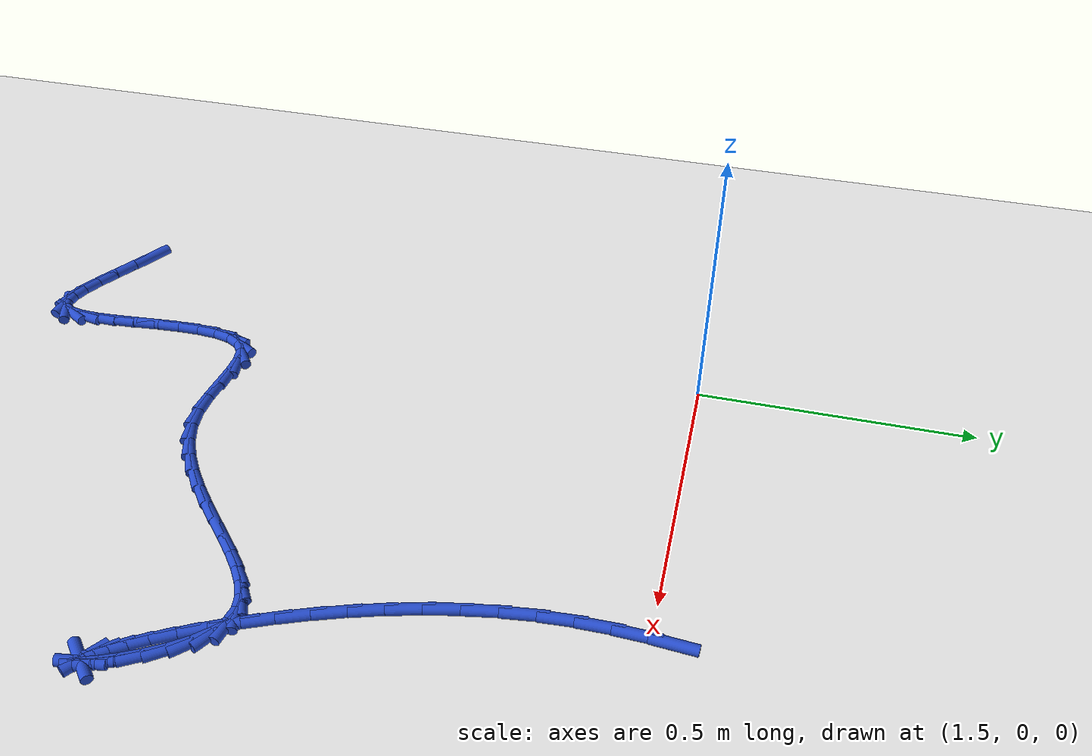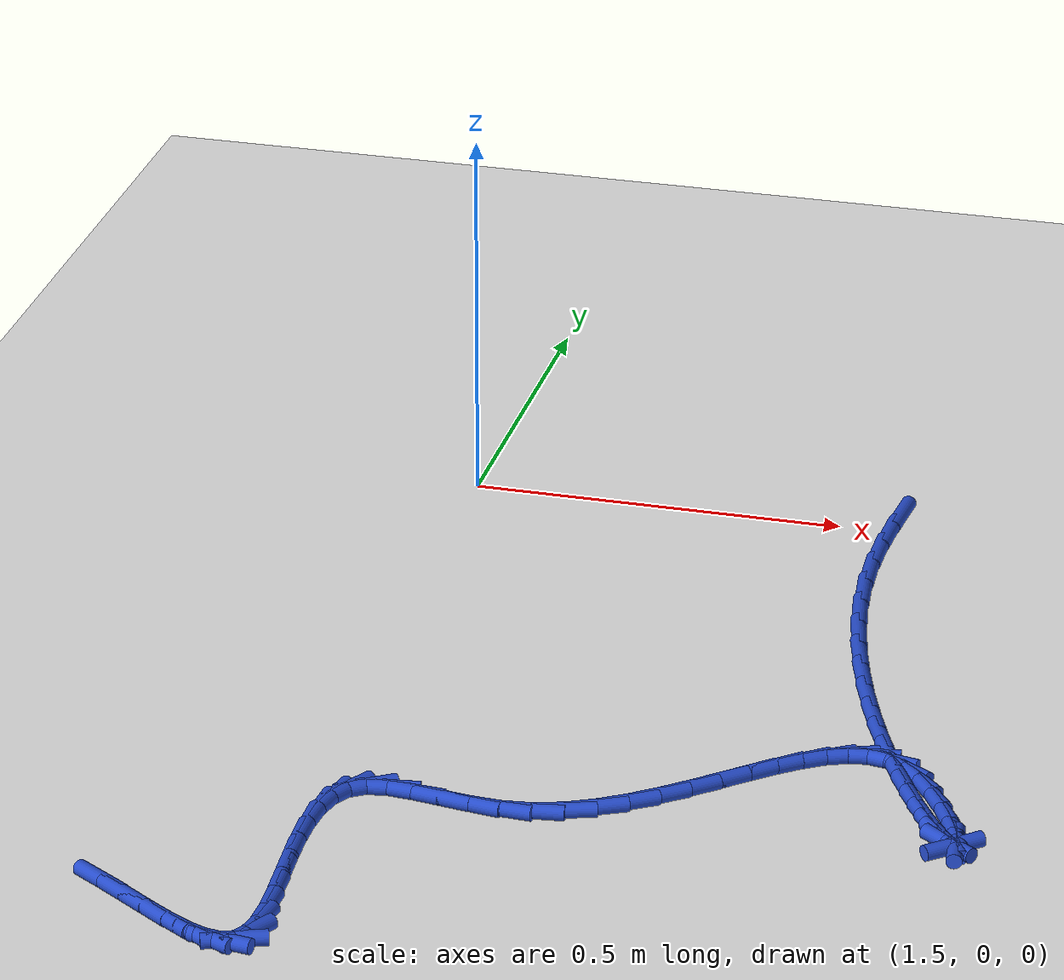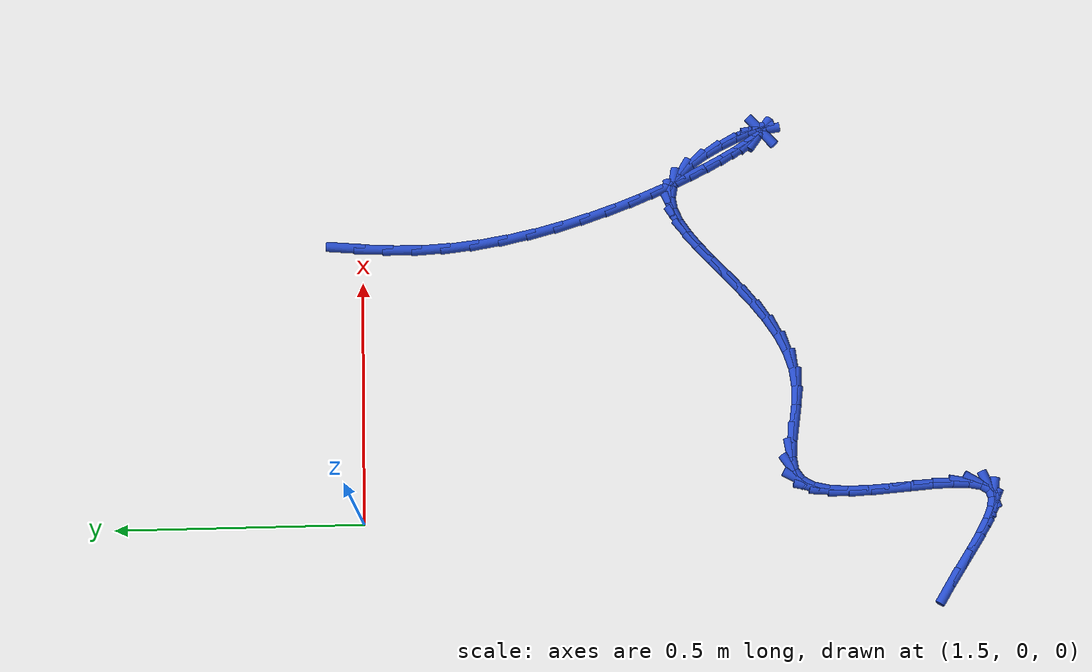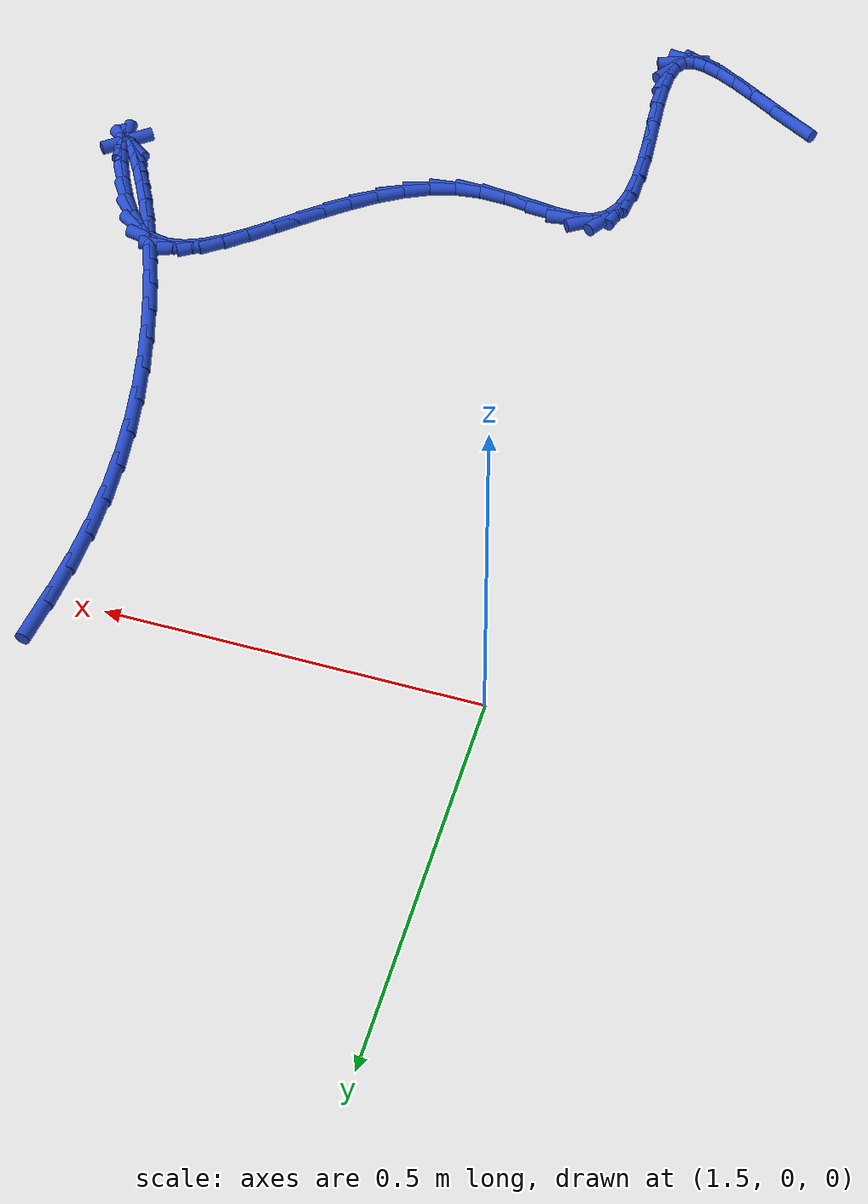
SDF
<sdf version="1.6">
 <world name="default">
  <model name="ground_plane">
   <static>1</static>
   <link name="link">
    <collision name="collision">
     <geometry><plane><normal>0 0 1</normal><size>100 100</size></plane></geometry>
     <surface><friction><ode><mu>100</mu><mu2>50</mu2></ode></friction></surface>
    </collision>
    <visual name="visual">
     <cast_shadows>0</cast_shadows>
     <geometry><plane><normal>0 0 1</normal><size>100 100</size></plane></geometry>
     <material>
      <script><uri>file://media/materials/scripts/gazebo.material</uri><name>Gazebo/WhiteGlow</name></script>
     </material>
    </visual>
   </link>
  </model>
  <model name="line">
   <link name="link_138">
    <pose>2.0751344877637825 0.03548831418222004 0.01 0 1.57 1.4849274273741448</pose>
    <collision name="collision">
     <geometry><cylinder><radius>0.01</radius><length>0.08</length></cylinder></geometry>
    </collision>
    <visual name="visual">
     <material>
      <script><name>Gazebo/Blue</name><uri>file://media/materials/scripts/gazebo.material</uri></script>
     </material>
     <geometry><cylinder><radius>0.01</radius><length>0.08</length></cylinder></geometry>
    </visual>
   </link>
   <link name="link_139">
    <pose>2.070187651464108 -0.021979196242401466 0.01 0 1.57 1.527005799963825</pose>
    <collision name="collision">
     <geometry><cylinder><radius>0.01</radius><length>0.08</length></cylinder></geometry>
    </collision>
    <visual name="visual">
     <material>
      <script><name>Gazebo/Blue</name><uri>file://media/materials/scripts/gazebo.material</uri></script>
     </material>
     <geometry><cylinder><radius>0.01</radius><length>0.08</length></cylinder></geometry>
    </visual>
   </link>
   <link name="link_140">
    <pose>2.0676266993485513 -0.0804236846311027 0.01 0 1.57 -1.5651714506020724</pose>
    <collision name="collision">
     <geometry><cylinder><radius>0.01</radius><length>0.08</length></cylinder></geometry>
    </collision>
    <visual name="visual">
     <material>
      <script><name>Gazebo/Blue</name><uri>file://media/materials/scripts/gazebo.material</uri></script>
     </material>
     <geometry><cylinder><radius>0.01</radius><length>0.08</length></cylinder></geometry>
    </visual>
   </link>
   <link name="link_141">
    <pose>2.0679588255022336 -0.13946901106155285 0.01 0 1.57 -1.5080369851546678</pose>
    <collision name="collision">
     <geometry><cylinder><radius>0.01</radius><length>0.08</length></cylinder></geometry>
    </collision>
    <visual name="visual">
     <material>
      <script><name>Gazebo/Blue</name><uri>file://media/materials/scripts/gazebo.material</uri></script>
     </material>
     <geometry><cylinder><radius>0.01</radius><length>0.08</length></cylinder></geometry>
    </visual>
   </link>
   <link name="link_142">
    <pose>2.0716834360979073 -0.198738581603041 0.01 0 1.57 -1.4488719682675828</pose>
    <collision name="collision">
     <geometry><cylinder><radius>0.01</radius><length>0.08</length></cylinder></geometry>
    </collision>
    <visual name="visual">
     <material>
      <script><name>Gazebo/Blue</name><uri>file://media/materials/scripts/gazebo.material</uri></script>
     </material>
     <geometry><cylinder><radius>0.01</radius><length>0.08</length></cylinder></geometry>
    </visual>
   </link>
   <link name="link_143">
    <pose>2.0789245133588325 -0.25783391640613457 0.01 0 1.57 -1.3957090344412202</pose>
    <collision name="collision">
     <geometry><cylinder><radius>0.01</radius><length>0.08</length></cylinder></geometry>
    </collision>
    <visual name="visual">
     <material>
      <script><name>Gazebo/Blue</name><uri>file://media/materials/scripts/gazebo.material</uri></script>
     </material>
     <geometry><cylinder><radius>0.01</radius><length>0.08</length></cylinder></geometry>
    </visual>
   </link>
   <link name="link_144">
    <pose>2.0892715733677623 -0.31632537809260447 0.01 0 1.57 -1.3482528554422821</pose>
    <collision name="collision">
     <geometry><cylinder><radius>0.01</radius><length>0.08</length></cylinder></geometry>
    </collision>
    <visual name="visual">
     <material>
      <script><name>Gazebo/Blue</name><uri>file://media/materials/scripts/gazebo.material</uri></script>
     </material>
     <geometry><cylinder><radius>0.01</radius><length>0.08</length></cylinder></geometry>
    </visual>
   </link>
   <link name="link_145">
    <pose>2.102273286608527 -0.37378094812698043 0.01 0 1.57 -1.3056139599089225</pose>
    <collision name="collision">
     <geometry><cylinder><radius>0.01</radius><length>0.08</length></cylinder></geometry>
    </collision>
    <visual name="visual">
     <material>
      <script><name>Gazebo/Blue</name><uri>file://media/materials/scripts/gazebo.material</uri></script>
     </material>
     <geometry><cylinder><radius>0.01</radius><length>0.08</length></cylinder></geometry>
    </visual>
   </link>
   <link name="link_146">
    <pose>2.1174783235649537 -0.42976860797378524 0.01 0 1.57 -1.266991806893755</pose>
    <collision name="collision">
     <geometry><cylinder><radius>0.01</radius><length>0.08</length></cylinder></geometry>
    </collision>
    <visual name="visual">
     <material>
      <script><name>Gazebo/Blue</name><uri>file://media/materials/scripts/gazebo.material</uri></script>
     </material>
     <geometry><cylinder><radius>0.01</radius><length>0.08</length></cylinder></geometry>
    </visual>
   </link>
   <link name="link_147">
    <pose>2.134435354720871 -0.48385633909754855 0.01 0 1.57 -1.2316592356665572</pose>
    <collision name="collision">
     <geometry><cylinder><radius>0.01</radius><length>0.08</length></cylinder></geometry>
    </collision>
    <visual name="visual">
     <material>
      <script><name>Gazebo/Blue</name><uri>file://media/materials/scripts/gazebo.material</uri></script>
     </material>
     <geometry><cylinder><radius>0.01</radius><length>0.08</length></cylinder></geometry>
    </visual>
   </link>
   <link name="link_148">
    <pose>2.1526930505601087 -0.5356121229627934 0.01 0 1.57 -1.1989363205473795</pose>
    <collision name="collision">
     <geometry><cylinder><radius>0.01</radius><length>0.08</length></cylinder></geometry>
    </collision>
    <visual name="visual">
     <material>
      <script><name>Gazebo/Blue</name><uri>file://media/materials/scripts/gazebo.material</uri></script>
     </material>
     <geometry><cylinder><radius>0.01</radius><length>0.08</length></cylinder></geometry>
    </visual>
   </link>
   <link name="link_149">
    <pose>2.171800081566494 -0.5846039410340486 0.01 0 1.57 -1.168152693459427</pose>
    <collision name="collision">
     <geometry><cylinder><radius>0.01</radius><length>0.08</length></cylinder></geometry>
    </collision>
    <visual name="visual">
     <material>
      <script><name>Gazebo/Blue</name><uri>file://media/materials/scripts/gazebo.material</uri></script>
     </material>
     <geometry><cylinder><radius>0.01</radius><length>0.08</length></cylinder></geometry>
    </visual>
   </link>
   <link name="link_150">
    <pose>2.1913051182238568 -0.630399774775838 0.01 0 1.57 -1.1385911690107737</pose>
    <collision name="collision">
     <geometry><cylinder><radius>0.01</radius><length>0.08</length></cylinder></geometry>
    </collision>
    <visual name="visual">
     <material>
      <script><name>Gazebo/Blue</name><uri>file://media/materials/scripts/gazebo.material</uri></script>
     </material>
     <geometry><cylinder><radius>0.01</radius><length>0.08</length></cylinder></geometry>
    </visual>
   </link>
   <link name="link_151">
    <pose>2.210756831016025 -0.6725676056526894 0.01 0 1.57 -1.1093942440795812</pose>
    <collision name="collision">
     <geometry><cylinder><radius>0.01</radius><length>0.08</length></cylinder></geometry>
    </collision>
    <visual name="visual">
     <material>
      <script><name>Gazebo/Blue</name><uri>file://media/materials/scripts/gazebo.material</uri></script>
     </material>
     <geometry><cylinder><radius>0.01</radius><length>0.08</length></cylinder></geometry>
    </visual>
   </link>
   <link name="link_152">
    <pose>2.229703890426828 -0.7106754151291297 0.01 0 1.57 -1.0793887672048101</pose>
    <collision name="collision">
     <geometry><cylinder><radius>0.01</radius><length>0.08</length></cylinder></geometry>
    </collision>
    <visual name="visual">
     <material>
      <script><name>Gazebo/Blue</name><uri>file://media/materials/scripts/gazebo.material</uri></script>
     </material>
     <geometry><cylinder><radius>0.01</radius><length>0.08</length></cylinder></geometry>
    </visual>
   </link>
   <link name="link_153">
    <pose>2.247694966940093 -0.744291184669683 0.01 0 1.57 -1.0467115631695425</pose>
    <collision name="collision">
     <geometry><cylinder><radius>0.01</radius><length>0.08</length></cylinder></geometry>
    </collision>
    <visual name="visual">
     <material>
      <script><name>Gazebo/Blue</name><uri>file://media/materials/scripts/gazebo.material</uri></script>
     </material>
     <geometry><cylinder><radius>0.01</radius><length>0.08</length></cylinder></geometry>
    </visual>
   </link>
   <link name="link_154">
    <pose>2.2642787310396506 -0.7729828957388779 0.01 0 1.57 -1.007883703722142</pose>
    <collision name="collision">
     <geometry><cylinder><radius>0.01</radius><length>0.08</length></cylinder></geometry>
    </collision>
    <visual name="visual">
     <material>
      <script><name>Gazebo/Blue</name><uri>file://media/materials/scripts/gazebo.material</uri></script>
     </material>
     <geometry><cylinder><radius>0.01</radius><length>0.08</length></cylinder></geometry>
    </visual>
   </link>
   <link name="link_155">
    <pose>2.279003853209328 -0.7963185298012385 0.01 0 1.57 -0.9550443724175812</pose>
    <collision name="collision">
     <geometry><cylinder><radius>0.01</radius><length>0.08</length></cylinder></geometry>
    </collision>
    <visual name="visual">
     <material>
      <script><name>Gazebo/Blue</name><uri>file://media/materials/scripts/gazebo.material</uri></script>
     </material>
     <geometry><cylinder><radius>0.01</radius><length>0.08</length></cylinder></geometry>
    </visual>
   </link>
   <link name="link_156">
    <pose>2.2914190039329543 -0.8138660683212927 0.01 0 1.57 -0.8649947975606538</pose>
    <collision name="collision">
     <geometry><cylinder><radius>0.01</radius><length>0.08</length></cylinder></geometry>
    </collision>
    <visual name="visual">
     <material>
      <script><name>Gazebo/Blue</name><uri>file://media/materials/scripts/gazebo.material</uri></script>
     </material>
     <geometry><cylinder><radius>0.01</radius><length>0.08</length></cylinder></geometry>
    </visual>
   </link>
   <link name="link_157">
    <pose>2.301072853694358 -0.8251934927635654 0.01 0 1.57 -0.6278582843402382</pose>
    <collision name="collision">
     <geometry><cylinder><radius>0.01</radius><length>0.08</length></cylinder></geometry>
    </collision>
    <visual name="visual">
     <material>
      <script><name>Gazebo/Blue</name><uri>file://media/materials/scripts/gazebo.material</uri></script>
     </material>
     <geometry><cylinder><radius>0.01</radius><length>0.08</length></cylinder></geometry>
    </visual>
   </link>
   <link name="link_158">
    <pose>2.307514072977368 -0.8298687845925836 0.01 0 1.57 0.7144815093225223</pose>
    <collision name="collision">
     <geometry><cylinder><radius>0.01</radius><length>0.08</length></cylinder></geometry>
    </collision>
    <visual name="visual">
     <material>
      <script><name>Gazebo/Blue</name><uri>file://media/materials/scripts/gazebo.material</uri></script>
     </material>
     <geometry><cylinder><radius>0.01</radius><length>0.08</length></cylinder></geometry>
    </visual>
   </link>
   <link name="link_159">
    <pose>2.310291332265813 -0.8274599252728735 0.01 0 1.57 -1.436790535202055</pose>
    <collision name="collision">
     <geometry><cylinder><radius>0.01</radius><length>0.08</length></cylinder></geometry>
    </collision>
    <visual name="visual">
     <material>
      <script><name>Gazebo/Blue</name><uri>file://media/materials/scripts/gazebo.material</uri></script>
     </material>
     <geometry><cylinder><radius>0.01</radius><length>0.08</length></cylinder></geometry>
    </visual>
   </link>
   <link name="link_160">
    <pose>2.308953302043521 -0.8175348962689611 0.01 0 1.57 -1.2517214711202553</pose>
    <collision name="collision">
     <geometry><cylinder><radius>0.01</radius><length>0.08</length></cylinder></geometry>
    </collision>
    <visual name="visual">
     <material>
      <script><name>Gazebo/Blue</name><uri>file://media/materials/scripts/gazebo.material</uri></script>
     </material>
     <geometry><cylinder><radius>0.01</radius><length>0.08</length></cylinder></geometry>
    </visual>
   </link>
   <link name="link_161">
    <pose>2.3030486527943212 -0.7996616790453724 0.01 0 1.57 -1.1751532538493474</pose>
    <collision name="collision">
     <geometry><cylinder><radius>0.01</radius><length>0.08</length></cylinder></geometry>
    </collision>
    <visual name="visual">
     <material>
      <script><name>Gazebo/Blue</name><uri>file://media/materials/scripts/gazebo.material</uri></script>
     </material>
     <geometry><cylinder><radius>0.01</radius><length>0.08</length></cylinder></geometry>
    </visual>
   </link>
   <link name="link_162">
    <pose>2.2922572404946684 -0.7738243126675026 0.01 0 1.57 -1.1177206950537102</pose>
    <collision name="collision">
     <geometry><cylinder><radius>0.01</radius><length>0.08</length></cylinder></geometry>
    </collision>
    <visual name="visual">
     <material>
      <script><name>Gazebo/Blue</name><uri>file://media/materials/scripts/gazebo.material</uri></script>
     </material>
     <geometry><cylinder><radius>0.01</radius><length>0.08</length></cylinder></geometry>
    </visual>
   </link>
   <link name="link_163">
    <pose>2.2771151657083264 -0.7427224342567551 0.01 0 1.57 -1.05170719721193</pose>
    <collision name="collision">
     <geometry><cylinder><radius>0.01</radius><length>0.08</length></cylinder></geometry>
    </collision>
    <visual name="visual">
     <material>
      <script><name>Gazebo/Blue</name><uri>file://media/materials/scripts/gazebo.material</uri></script>
     </material>
     <geometry><cylinder><radius>0.01</radius><length>0.08</length></cylinder></geometry>
    </visual>
   </link>
   <link name="link_164">
    <pose>2.258502055099322 -0.7101451813225004 0.01 0 1.57 -0.959600257633628</pose>
    <collision name="collision">
     <geometry><cylinder><radius>0.01</radius><length>0.08</length></cylinder></geometry>
    </collision>
    <visual name="visual">
     <material>
      <script><name>Gazebo/Blue</name><uri>file://media/materials/scripts/gazebo.material</uri></script>
     </material>
     <geometry><cylinder><radius>0.01</radius><length>0.08</length></cylinder></geometry>
    </visual>
   </link>
   <link name="link_165">
    <pose>2.2372984585372038 -0.679884619340196 0.01 0 1.57 -0.811701752516521</pose>
    <collision name="collision">
     <geometry><cylinder><radius>0.01</radius><length>0.08</length></cylinder></geometry>
    </collision>
    <visual name="visual">
     <material>
      <script><name>Gazebo/Blue</name><uri>file://media/materials/scripts/gazebo.material</uri></script>
     </material>
     <geometry><cylinder><radius>0.01</radius><length>0.08</length></cylinder></geometry>
    </visual>
   </link>
   <link name="link_166">
    <pose>2.214384925891521 -0.6557328137853036 0.01 0 1.57 -0.550235162257148</pose>
    <collision name="collision">
     <geometry><cylinder><radius>0.01</radius><length>0.08</length></cylinder></geometry>
    </collision>
    <visual name="visual">
     <material>
      <script><name>Gazebo/Blue</name><uri>file://media/materials/scripts/gazebo.material</uri></script>
     </material>
     <geometry><cylinder><radius>0.01</radius><length>0.08</length></cylinder></geometry>
    </visual>
   </link>
   <link name="link_167">
    <pose>2.190576963738171 -0.6411283236732721 0.01 0 1.57 -0.19124957295641087</pose>
    <collision name="collision">
     <geometry><cylinder><radius>0.01</radius><length>0.08</length></cylinder></geometry>
    </collision>
    <visual name="visual">
     <material>
      <script><name>Gazebo/Blue</name><uri>file://media/materials/scripts/gazebo.material</uri></script>
     </material>
     <geometry><cylinder><radius>0.01</radius><length>0.08</length></cylinder></geometry>
    </visual>
   </link>
   <link name="link_168">
    <pose>2.1661165087896816 -0.6363923896829283 0.01 0 1.57 0.15106575296611632</pose>
    <collision name="collision">
     <geometry><cylinder><radius>0.01</radius><length>0.08</length></cylinder></geometry>
    </collision>
    <visual name="visual">
     <material>
      <script><name>Gazebo/Blue</name><uri>file://media/materials/scripts/gazebo.material</uri></script>
     </material>
     <geometry><cylinder><radius>0.01</radius><length>0.08</length></cylinder></geometry>
    </visual>
   </link>
   <link name="link_169">
    <pose>2.1409469813340003 -0.6402238333536849 0.01 0 1.57 0.40383380358042154</pose>
    <collision name="collision">
     <geometry><cylinder><radius>0.01</radius><length>0.08</length></cylinder></geometry>
    </collision>
    <visual name="visual">
     <material>
      <script><name>Gazebo/Blue</name><uri>file://media/materials/scripts/gazebo.material</uri></script>
     </material>
     <geometry><cylinder><radius>0.01</radius><length>0.08</length></cylinder></geometry>
    </visual>
   </link>
   <link name="link_170">
    <pose>2.1150092378115217 -0.6513075418649136 0.01 0 1.57 0.5664239279947947</pose>
    <collision name="collision">
     <geometry><cylinder><radius>0.01</radius><length>0.08</length></cylinder></geometry>
    </collision>
    <visual name="visual">
     <material>
      <script><name>Gazebo/Blue</name><uri>file://media/materials/scripts/gazebo.material</uri></script>
     </material>
     <geometry><cylinder><radius>0.01</radius><length>0.08</length></cylinder></geometry>
    </visual>
   </link>
   <link name="link_171">
    <pose>2.0882441346626437 -0.6683284023959869 0.01 0 1.57 0.6641025025992118</pose>
    <collision name="collision">
     <geometry><cylinder><radius>0.01</radius><length>0.08</length></cylinder></geometry>
    </collision>
    <visual name="visual">
     <material>
      <script><name>Gazebo/Blue</name><uri>file://media/materials/scripts/gazebo.material</uri></script>
     </material>
     <geometry><cylinder><radius>0.01</radius><length>0.08</length></cylinder></geometry>
    </visual>
   </link>
   <link name="link_172">
    <pose>2.060592528327759 -0.6899713021262779 0.01 0 1.57 0.7173869564781608</pose>
    <collision name="collision">
     <geometry><cylinder><radius>0.01</radius><length>0.08</length></cylinder></geometry>
    </collision>
    <visual name="visual">
     <material>
      <script><name>Gazebo/Blue</name><uri>file://media/materials/scripts/gazebo.material</uri></script>
     </material>
     <geometry><cylinder><radius>0.01</radius><length>0.08</length></cylinder></geometry>
    </visual>
   </link>
   <link name="link_173">
    <pose>2.031995275247267 -0.7149211282351572 0.01 0 1.57 0.7383824221144216</pose>
    <collision name="collision">
     <geometry><cylinder><radius>0.01</radius><length>0.08</length></cylinder></geometry>
    </collision>
    <visual name="visual">
     <material>
      <script><name>Gazebo/Blue</name><uri>file://media/materials/scripts/gazebo.material</uri></script>
     </material>
     <geometry><cylinder><radius>0.01</radius><length>0.08</length></cylinder></geometry>
    </visual>
   </link>
   <link name="link_174">
    <pose>2.0023932318615616 -0.7418627679019992 0.01 0 1.57 0.7331566008826006</pose>
    <collision name="collision">
     <geometry><cylinder><radius>0.01</radius><length>0.08</length></cylinder></geometry>
    </collision>
    <visual name="visual">
     <material>
      <script><name>Gazebo/Blue</name><uri>file://media/materials/scripts/gazebo.material</uri></script>
     </material>
     <geometry><cylinder><radius>0.01</radius><length>0.08</length></cylinder></geometry>
    </visual>
   </link>
   <link name="link_175">
    <pose>1.971727254611039 -0.7694811083061739 0.01 0 1.57 0.7037490594920985</pose>
    <collision name="collision">
     <geometry><cylinder><radius>0.01</radius><length>0.08</length></cylinder></geometry>
    </collision>
    <visual name="visual">
     <material>
      <script><name>Gazebo/Blue</name><uri>file://media/materials/scripts/gazebo.material</uri></script>
     </material>
     <geometry><cylinder><radius>0.01</radius><length>0.08</length></cylinder></geometry>
    </visual>
   </link>
   <link name="link_176">
    <pose>1.939938199936095 -0.7964610366270557 0.01 0 1.57 0.6492594615334624</pose>
    <collision name="collision">
     <geometry><cylinder><radius>0.01</radius><length>0.08</length></cylinder></geometry>
    </collision>
    <visual name="visual">
     <material>
      <script><name>Gazebo/Blue</name><uri>file://media/materials/scripts/gazebo.material</uri></script>
     </material>
     <geometry><cylinder><radius>0.01</radius><length>0.08</length></cylinder></geometry>
    </visual>
   </link>
   <link name="link_177">
    <pose>1.9069669242771259 -0.8214874400440149 0.01 0 1.57 0.5664396862500773</pose>
    <collision name="collision">
     <geometry><cylinder><radius>0.01</radius><length>0.08</length></cylinder></geometry>
    </collision>
    <visual name="visual">
     <material>
      <script><name>Gazebo/Blue</name><uri>file://media/materials/scripts/gazebo.material</uri></script>
     </material>
     <geometry><cylinder><radius>0.01</radius><length>0.08</length></cylinder></geometry>
    </visual>
   </link>
   <link name="link_178">
    <pose>1.8727542840745275 -0.8432452057364257 0.01 0 1.57 0.450438469219469</pose>
    <collision name="collision">
     <geometry><cylinder><radius>0.01</radius><length>0.08</length></cylinder></geometry>
    </collision>
    <visual name="visual">
     <material>
      <script><name>Gazebo/Blue</name><uri>file://media/materials/scripts/gazebo.material</uri></script>
     </material>
     <geometry><cylinder><radius>0.01</radius><length>0.08</length></cylinder></geometry>
    </visual>
   </link>
   <link name="link_179">
    <pose>1.8372411357686957 -0.8604192208836585 0.01 0 1.57 0.2967557129609531</pose>
    <collision name="collision">
     <geometry><cylinder><radius>0.01</radius><length>0.08</length></cylinder></geometry>
    </collision>
    <visual name="visual">
     <material>
      <script><name>Gazebo/Blue</name><uri>file://media/materials/scripts/gazebo.material</uri></script>
     </material>
     <geometry><cylinder><radius>0.01</radius><length>0.08</length></cylinder></geometry>
    </visual>
   </link>
   <link name="link_180">
    <pose>1.8003683358000258 -0.871694372665087 0.01 0 1.57 0.10721887699976104</pose>
    <collision name="collision">
     <geometry><cylinder><radius>0.01</radius><length>0.08</length></cylinder></geometry>
    </collision>
    <visual name="visual">
     <material>
      <script><name>Gazebo/Blue</name><uri>file://media/materials/scripts/gazebo.material</uri></script>
     </material>
     <geometry><cylinder><radius>0.01</radius><length>0.08</length></cylinder></geometry>
    </visual>
   </link>
   <link name="link_181">
    <pose>1.762097114232441 -0.87581356677089 0.01 0 1.57 -0.059604822088339185</pose>
    <collision name="collision">
     <geometry><cylinder><radius>0.01</radius><length>0.08</length></cylinder></geometry>
    </collision>
    <visual name="visual">
     <material>
      <script><name>Gazebo/Blue</name><uri>file://media/materials/scripts/gazebo.material</uri></script>
     </material>
     <geometry><cylinder><radius>0.01</radius><length>0.08</length></cylinder></geometry>
    </visual>
   </link>
   <link name="link_182">
    <pose>1.7230788743025944 -0.8734851334329589 0.01 0 1.57 -0.1470986528737949</pose>
    <collision name="collision">
     <geometry><cylinder><radius>0.01</radius><length>0.08</length></cylinder></geometry>
    </collision>
    <visual name="visual">
     <material>
      <script><name>Gazebo/Blue</name><uri>file://media/materials/scripts/gazebo.material</uri></script>
     </material>
     <geometry><cylinder><radius>0.01</radius><length>0.08</length></cylinder></geometry>
    </visual>
   </link>
   <link name="link_183">
    <pose>1.6848067400820774 -0.8678143937423145 0.01 0 1.57 -0.1587969866800058</pose>
    <collision name="collision">
     <geometry><cylinder><radius>0.01</radius><length>0.08</length></cylinder></geometry>
    </collision>
    <visual name="visual">
     <material>
      <script><name>Gazebo/Blue</name><uri>file://media/materials/scripts/gazebo.material</uri></script>
     </material>
     <geometry><cylinder><radius>0.01</radius><length>0.08</length></cylinder></geometry>
    </visual>
   </link>
   <link name="link_184">
    <pose>1.6488248936868877 -0.8620520681440614 0.01 0 1.57 -0.08080047934510524</pose>
    <collision name="collision">
     <geometry><cylinder><radius>0.01</radius><length>0.08</length></cylinder></geometry>
    </collision>
    <visual name="visual">
     <material>
      <script><name>Gazebo/Blue</name><uri>file://media/materials/scripts/gazebo.material</uri></script>
     </material>
     <geometry><cylinder><radius>0.01</radius><length>0.08</length></cylinder></geometry>
    </visual>
   </link>
   <link name="link_185">
    <pose>1.6166775172330172 -0.8594488770833035 0.01 0 1.57 0.1412585359917469</pose>
    <collision name="collision">
     <geometry><cylinder><radius>0.01</radius><length>0.08</length></cylinder></geometry>
    </collision>
    <visual name="visual">
     <material>
      <script><name>Gazebo/Blue</name><uri>file://media/materials/scripts/gazebo.material</uri></script>
     </material>
     <geometry><cylinder><radius>0.01</radius><length>0.08</length></cylinder></geometry>
    </visual>
   </link>
   <link name="link_186">
    <pose>1.5899087928364637 -0.8632555410051453 0.01 0 1.57 0.5888351681957529</pose>
    <collision name="collision">
     <geometry><cylinder><radius>0.01</radius><length>0.08</length></cylinder></geometry>
    </collision>
    <visual name="visual">
     <material>
      <script><name>Gazebo/Blue</name><uri>file://media/materials/scripts/gazebo.material</uri></script>
     </material>
     <geometry><cylinder><radius>0.01</radius><length>0.08</length></cylinder></geometry>
    </visual>
   </link>
   <link name="link_187">
    <pose>1.5699798330725778 -0.8765654939315014 0.01 0 1.57 1.0584679327037818</pose>
    <collision name="collision">
     <geometry><cylinder><radius>0.01</radius><length>0.08</length></cylinder></geometry>
    </collision>
    <visual name="visual">
     <material>
      <script><name>Gazebo/Blue</name><uri>file://media/materials/scripts/gazebo.material</uri></script>
     </material>
     <geometry><cylinder><radius>0.01</radius><length>0.08</length></cylinder></geometry>
    </visual>
   </link>
   <link name="link_188">
    <pose>1.5569268212444993 -0.8997741649742709 0.01 0 1.57 1.340015867416229</pose>
    <collision name="collision">
     <geometry><cylinder><radius>0.01</radius><length>0.08</length></cylinder></geometry>
    </collision>
    <visual name="visual">
     <material>
      <script><name>Gazebo/Blue</name><uri>file://media/materials/scripts/gazebo.material</uri></script>
     </material>
     <geometry><cylinder><radius>0.01</radius><length>0.08</length></cylinder></geometry>
    </visual>
   </link>
   <link name="link_189">
    <pose>1.5495878119980504 -0.93100840959521 0.01 0 1.57 1.4952562546848085</pose>
    <collision name="collision">
     <geometry><cylinder><radius>0.01</radius><length>0.08</length></cylinder></geometry>
    </collision>
    <visual name="visual">
     <material>
      <script><name>Gazebo/Blue</name><uri>file://media/materials/scripts/gazebo.material</uri></script>
     </material>
     <geometry><cylinder><radius>0.01</radius><length>0.08</length></cylinder></geometry>
    </visual>
   </link>
   <link name="link_190">
    <pose>1.5467635783406977 -0.9683244930553512 0.01 0 1.57 -1.5589448839110116</pose>
    <collision name="collision">
     <geometry><cylinder><radius>0.01</radius><length>0.08</length></cylinder></geometry>
    </collision>
    <visual name="visual">
     <material>
      <script><name>Gazebo/Blue</name><uri>file://media/materials/scripts/gazebo.material</uri></script>
     </material>
     <geometry><cylinder><radius>0.01</radius><length>0.08</length></cylinder></geometry>
    </visual>
   </link>
   <link name="link_191">
    <pose>1.5472548932799075 -1.0097786806157305 0.01 0 1.57 -1.5111256050242219</pose>
    <collision name="collision">
     <geometry><cylinder><radius>0.01</radius><length>0.08</length></cylinder></geometry>
    </collision>
    <visual name="visual">
     <material>
      <script><name>Gazebo/Blue</name><uri>file://media/materials/scripts/gazebo.material</uri></script>
     </material>
     <geometry><cylinder><radius>0.01</radius><length>0.08</length></cylinder></geometry>
    </visual>
   </link>
   <link name="link_192">
    <pose>1.5498625298231463 -1.0534272375373794 0.01 0 1.57 -1.4906767192630315</pose>
    <collision name="collision">
     <geometry><cylinder><radius>0.01</radius><length>0.08</length></cylinder></geometry>
    </collision>
    <visual name="visual">
     <material>
      <script><name>Gazebo/Blue</name><uri>file://media/materials/scripts/gazebo.material</uri></script>
     </material>
     <geometry><cylinder><radius>0.01</radius><length>0.08</length></cylinder></geometry>
    </visual>
   </link>
   <link name="link_193">
    <pose>1.5533872609778796 -1.0973264290813332 0.01 0 1.57 -1.4941192086800943</pose>
    <collision name="collision">
     <geometry><cylinder><radius>0.01</radius><length>0.08</length></cylinder></geometry>
    </collision>
    <visual name="visual">
     <material>
      <script><name>Gazebo/Blue</name><uri>file://media/materials/scripts/gazebo.material</uri></script>
     </material>
     <geometry><cylinder><radius>0.01</radius><length>0.08</length></cylinder></geometry>
    </visual>
   </link>
   <link name="link_194">
    <pose>1.556629859751576 -1.1395325205086275 0.01 0 1.57 -1.5251636937415933</pose>
    <collision name="collision">
     <geometry><cylinder><radius>0.01</radius><length>0.08</length></cylinder></geometry>
    </collision>
    <visual name="visual">
     <material>
      <script><name>Gazebo/Blue</name><uri>file://media/materials/scripts/gazebo.material</uri></script>
     </material>
     <geometry><cylinder><radius>0.01</radius><length>0.08</length></cylinder></geometry>
    </visual>
   </link>
   <link name="link_195">
    <pose>1.5583910991517 -1.178101777080294 0.01 0 1.57 1.542934985361434</pose>
    <collision name="collision">
     <geometry><cylinder><radius>0.01</radius><length>0.08</length></cylinder></geometry>
    </collision>
    <visual name="visual">
     <material>
      <script><name>Gazebo/Blue</name><uri>file://media/materials/scripts/gazebo.material</uri></script>
     </material>
     <geometry><cylinder><radius>0.01</radius><length>0.08</length></cylinder></geometry>
    </visual>
   </link>
   <link name="link_196">
    <pose>1.5574717521857193 -1.2110904640573692 0.01 0 1.57 1.3845157276642341</pose>
    <collision name="collision">
     <geometry><cylinder><radius>0.01</radius><length>0.08</length></cylinder></geometry>
    </collision>
    <visual name="visual">
     <material>
      <script><name>Gazebo/Blue</name><uri>file://media/materials/scripts/gazebo.material</uri></script>
     </material>
     <geometry><cylinder><radius>0.01</radius><length>0.08</length></cylinder></geometry>
    </visual>
   </link>
   <link name="link_197">
    <pose>1.5526725918611 -1.2365548467008842 0.01 0 1.57 1.0179677665845936</pose>
    <collision name="collision">
     <geometry><cylinder><radius>0.01</radius><length>0.08</length></cylinder></geometry>
    </collision>
    <visual name="visual">
     <material>
      <script><name>Gazebo/Blue</name><uri>file://media/materials/scripts/gazebo.material</uri></script>
     </material>
     <geometry><cylinder><radius>0.01</radius><length>0.08</length></cylinder></geometry>
    </visual>
   </link>
   <link name="link_198">
    <pose>1.5427982839088559 -1.2525584888709376 0.01 0 1.57 0.3496963235513207</pose>
    <collision name="collision">
     <geometry><cylinder><radius>0.01</radius><length>0.08</length></cylinder></geometry>
    </collision>
    <visual name="visual">
     <material>
      <script><name>Gazebo/Blue</name><uri>file://media/materials/scripts/gazebo.material</uri></script>
     </material>
     <geometry><cylinder><radius>0.01</radius><length>0.08</length></cylinder></geometry>
    </visual>
   </link>
   <link name="link_199">
    <pose>1.527225594838671 -1.2582376055303666 0.01 0 1.57 -0.15862943263825025</pose>
    <collision name="collision">
     <geometry><cylinder><radius>0.01</radius><length>0.08</length></cylinder></geometry>
    </collision>
    <visual name="visual">
     <material>
      <script><name>Gazebo/Blue</name><uri>file://media/materials/scripts/gazebo.material</uri></script>
     </material>
     <geometry><cylinder><radius>0.01</radius><length>0.08</length></cylinder></geometry>
    </visual>
   </link>
   <link name="link_200">
    <pose>1.506501397123187 -1.2549222828938777 0.01 0 1.57 -0.4021228653840545</pose>
    <collision name="collision">
     <geometry><cylinder><radius>0.01</radius><length>0.08</length></cylinder></geometry>
    </collision>
    <visual name="visual">
     <material>
      <script><name>Gazebo/Blue</name><uri>file://media/materials/scripts/gazebo.material</uri></script>
     </material>
     <geometry><cylinder><radius>0.01</radius><length>0.08</length></cylinder></geometry>
    </visual>
   </link>
   <link name="link_201">
    <pose>1.4813156186053835 -1.2442108265292502 0.01 0 1.57 -0.5181610172120837</pose>
    <collision name="collision">
     <geometry><cylinder><radius>0.01</radius><length>0.08</length></cylinder></geometry>
    </collision>
    <visual name="visual">
     <material>
      <script><name>Gazebo/Blue</name><uri>file://media/materials/scripts/gazebo.material</uri></script>
     </material>
     <geometry><cylinder><radius>0.01</radius><length>0.08</length></cylinder></geometry>
    </visual>
   </link>
   <link name="link_202">
    <pose>1.4523581871282396 -1.227701542004261 0.01 0 1.57 -0.5738116004334395</pose>
    <collision name="collision">
     <geometry><cylinder><radius>0.01</radius><length>0.08</length></cylinder></geometry>
    </collision>
    <visual name="visual">
     <material>
      <script><name>Gazebo/Blue</name><uri>file://media/materials/scripts/gazebo.material</uri></script>
     </material>
     <geometry><cylinder><radius>0.01</radius><length>0.08</length></cylinder></geometry>
    </visual>
   </link>
   <link name="link_203">
    <pose>1.4203190305347362 -1.2069927348866896 0.01 0 1.57 -0.5951277178434856</pose>
    <collision name="collision">
     <geometry><cylinder><radius>0.01</radius><length>0.08</length></cylinder></geometry>
    </collision>
    <visual name="visual">
     <material>
      <script><name>Gazebo/Blue</name><uri>file://media/materials/scripts/gazebo.material</uri></script>
     </material>
     <geometry><cylinder><radius>0.01</radius><length>0.08</length></cylinder></geometry>
    </visual>
   </link>
   <link name="link_204">
    <pose>1.3858880766678516 -1.183682710744314 0.01 0 1.57 -0.5922895572464811</pose>
    <collision name="collision">
     <geometry><cylinder><radius>0.01</radius><length>0.08</length></cylinder></geometry>
    </collision>
    <visual name="visual">
     <material>
      <script><name>Gazebo/Blue</name><uri>file://media/materials/scripts/gazebo.material</uri></script>
     </material>
     <geometry><cylinder><radius>0.01</radius><length>0.08</length></cylinder></geometry>
    </visual>
   </link>
   <link name="link_205">
    <pose>1.3497552533705657 -1.1593697751449112 0.01 0 1.57 -0.5682599836584813</pose>
    <collision name="collision">
     <geometry><cylinder><radius>0.01</radius><length>0.08</length></cylinder></geometry>
    </collision>
    <visual name="visual">
     <material>
      <script><name>Gazebo/Blue</name><uri>file://media/materials/scripts/gazebo.material</uri></script>
     </material>
     <geometry><cylinder><radius>0.01</radius><length>0.08</length></cylinder></geometry>
    </visual>
   </link>
  </model>
 </world>
</sdf>
